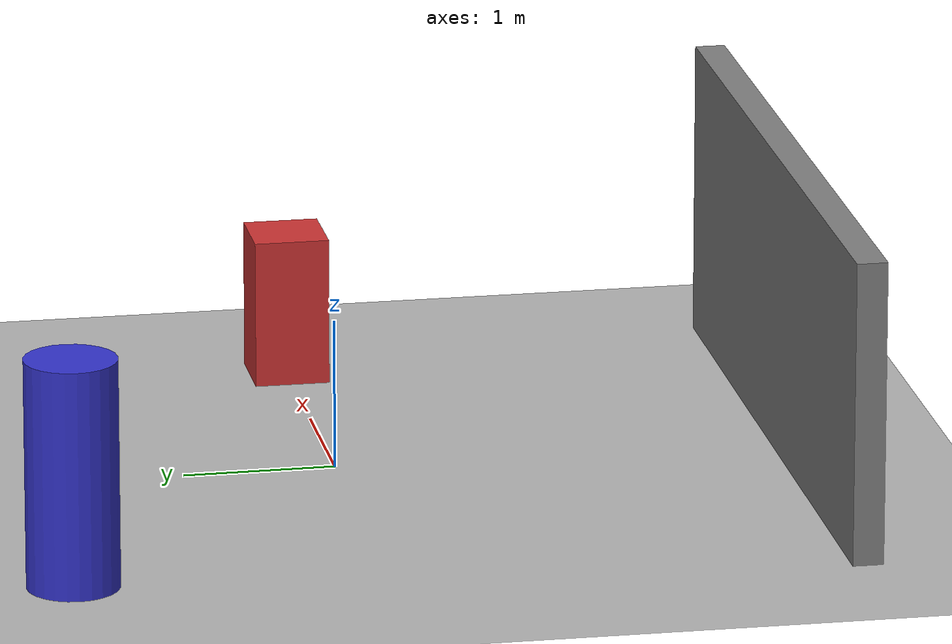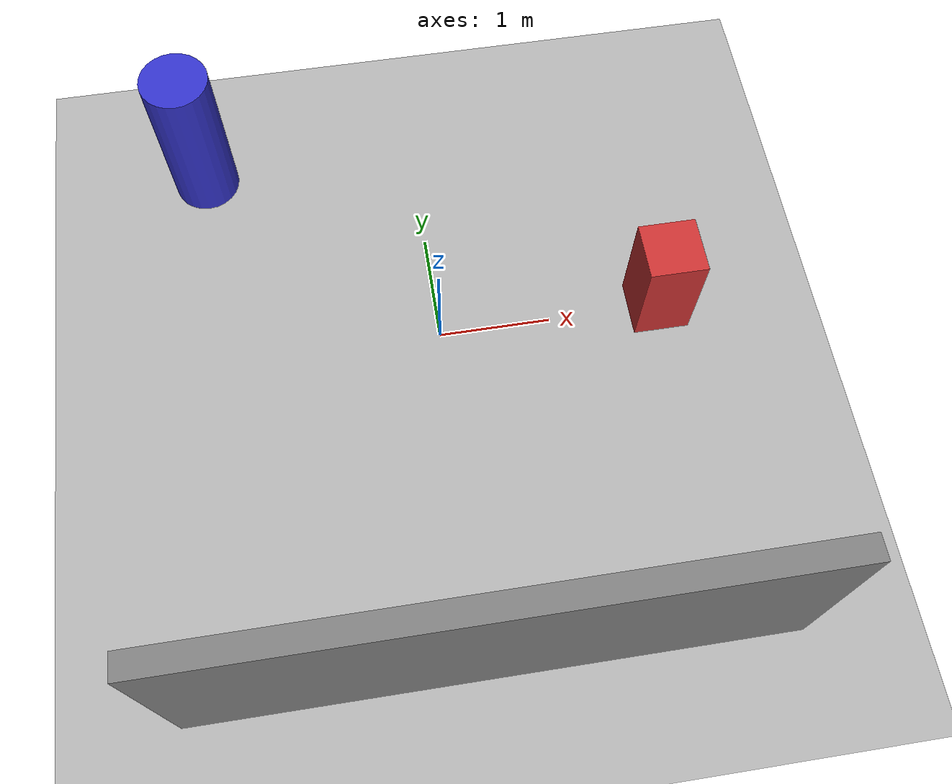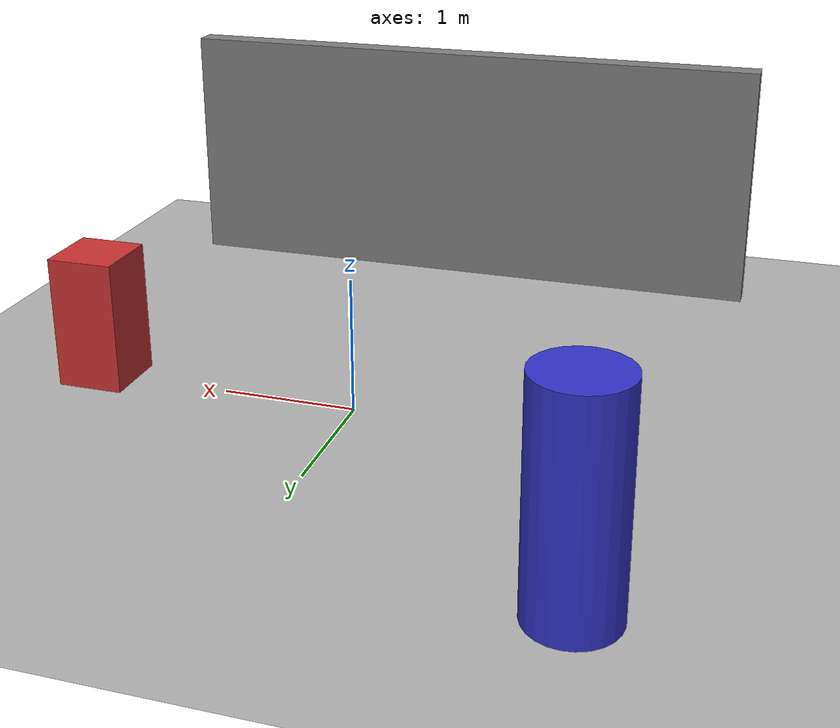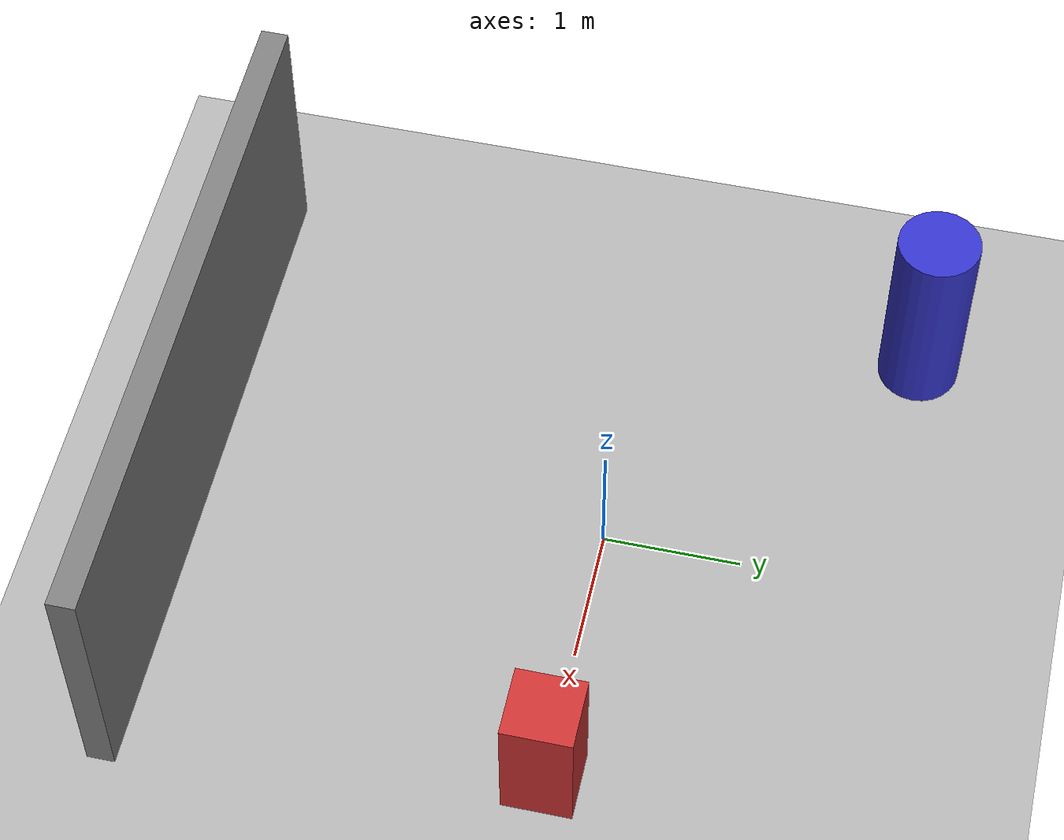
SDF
<?xml version="1.0" ?>
<sdf version="1.8">
  <world name="robot_playground">

    <!-- Physics Engine Configuration -->
    <physics name="1ms" type="ignored">
      <max_step_size>0.001</max_step_size>
      <real_time_factor>1.0</real_time_factor>
    </physics>

    <!-- Plugins for ROS 2 integration -->
    <plugin
      filename="libignition-gazebo-physics-system.so"
      name="ignition::gazebo::systems::Physics">
    </plugin>
    <plugin
      filename="libignition-gazebo-user-commands-system.so"
      name="ignition::gazebo::systems::UserCommands">
    </plugin>
    <plugin
      filename="libignition-gazebo-scene-broadcaster-system.so"
      name="ignition::gazebo::systems::SceneBroadcaster">
    </plugin>

    <!-- Sun Light -->
    <light type="directional" name="sun">
      <cast_shadows>true</cast_shadows>
      <pose>0 0 10 0 0 0</pose>
      <diffuse>0.8 0.8 0.8 1</diffuse>
      <specular>0.2 0.2 0.2 1</specular>
      <attenuation>
        <range>1000</range>
        <constant>0.9</constant>
        <linear>0.01</linear>
        <quadratic>0.001</quadratic>
      </attenuation>
      <direction>-0.5 0.1 -0.9</direction>
    </light>

    <!-- Ground Plane -->
    <model name="ground_plane">
      <static>true</static>
      <link name="link">
        <collision name="collision">
          <geometry>
            <plane>
              <normal>0 0 1</normal>
              <size>100 100</size>
            </plane>
          </geometry>
          <surface>
            <friction>
              <ode>
                <mu>0.8</mu>  <!-- Friction coefficient -->
                <mu2>0.8</mu2>
              </ode>
            </friction>
          </surface>
        </collision>
        <visual name="visual">
          <geometry>
            <plane>
              <normal>0 0 1</normal>
              <size>100 100</size>
            </plane>
          </geometry>
          <material>
            <ambient>0.7 0.7 0.7 1</ambient>
            <diffuse>0.7 0.7 0.7 1</diffuse>
            <specular>0.1 0.1 0.1 1</specular>
          </material>
        </visual>
      </link>
    </model>

    <!-- Obstacle 1: Box -->
    <model name="box_obstacle_1">
      <pose>2 0 0.5 0 0 0</pose>
      <static>true</static>
      <link name="link">
        <collision name="collision">
          <geometry>
            <box>
              <size>0.5 0.5 1.0</size>
            </box>
          </geometry>
        </collision>
        <visual name="visual">
          <geometry>
            <box>
              <size>0.5 0.5 1.0</size>
            </box>
          </geometry>
          <material>
            <ambient>0.8 0.2 0.2 1</ambient>
            <diffuse>0.8 0.2 0.2 1</diffuse>
          </material>
        </visual>
      </link>
    </model>

    <!-- Obstacle 2: Cylinder -->
    <model name="cylinder_obstacle">
      <pose>-2 2 0.75 0 0 0</pose>
      <static>true</static>
      <link name="link">
        <collision name="collision">
          <geometry>
            <cylinder>
              <radius>0.3</radius>
              <length>1.5</length>
            </cylinder>
          </geometry>
        </collision>
        <visual name="visual">
          <geometry>
            <cylinder>
              <radius>0.3</radius>
              <length>1.5</length>
            </cylinder>
          </geometry>
          <material>
            <ambient>0.2 0.2 0.8 1</ambient>
            <diffuse>0.2 0.2 0.8 1</diffuse>
          </material>
        </visual>
      </link>
    </model>

    <!-- Obstacle 3: Wall -->
    <model name="wall">
      <pose>0 -3 1.0 0 0 0</pose>
      <static>true</static>
      <link name="link">
        <collision name="collision">
          <geometry>
            <box>
              <size>5.0 0.2 2.0</size>
            </box>
          </geometry>
        </collision>
        <visual name="visual">
          <geometry>
            <box>
              <size>5.0 0.2 2.0</size>
            </box>
          </geometry>
          <material>
            <ambient>0.5 0.5 0.5 1</ambient>
            <diffuse>0.5 0.5 0.5 1</diffuse>
          </material>
        </visual>
      </link>
    </model>

  </world>
</sdf>
